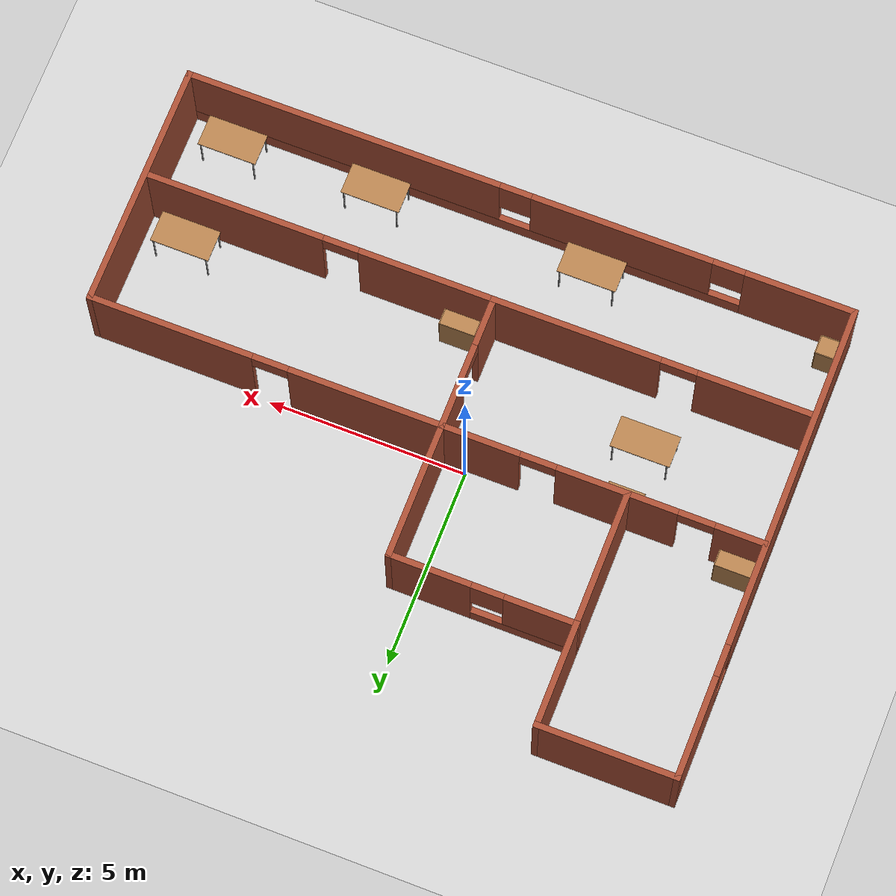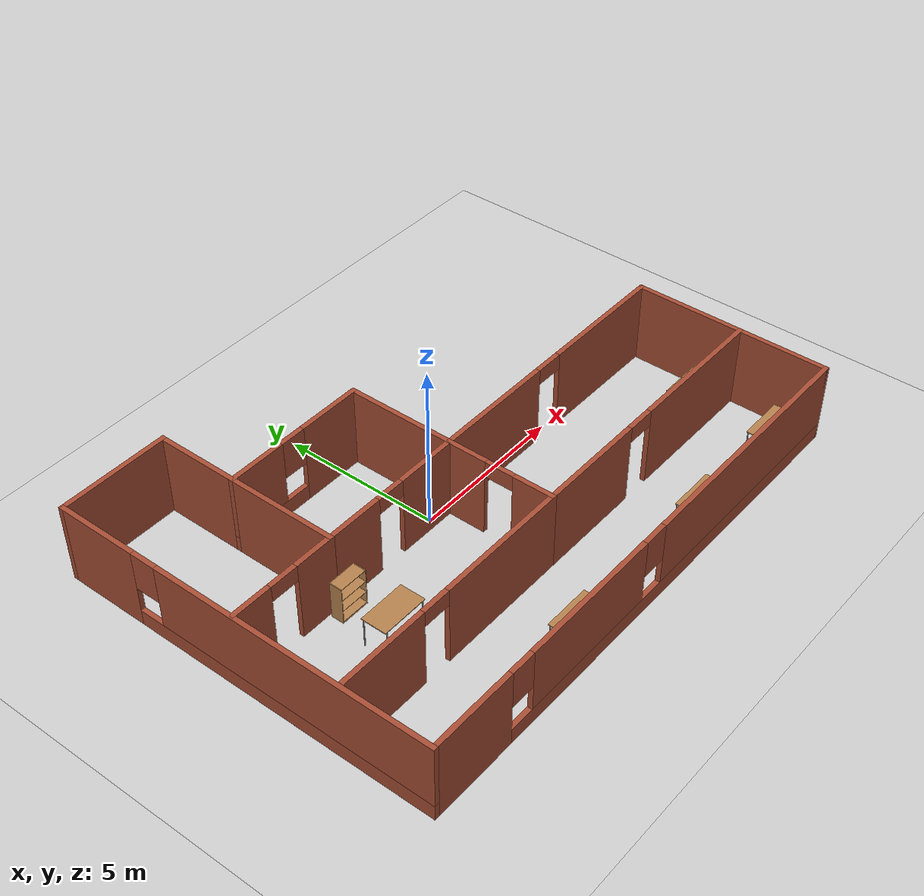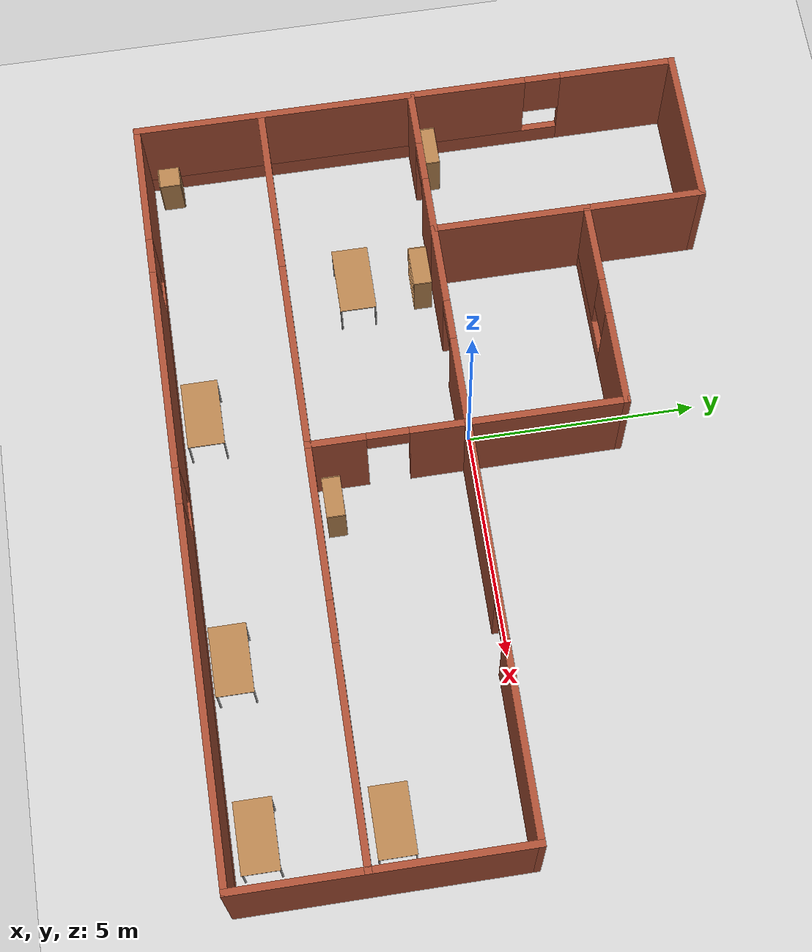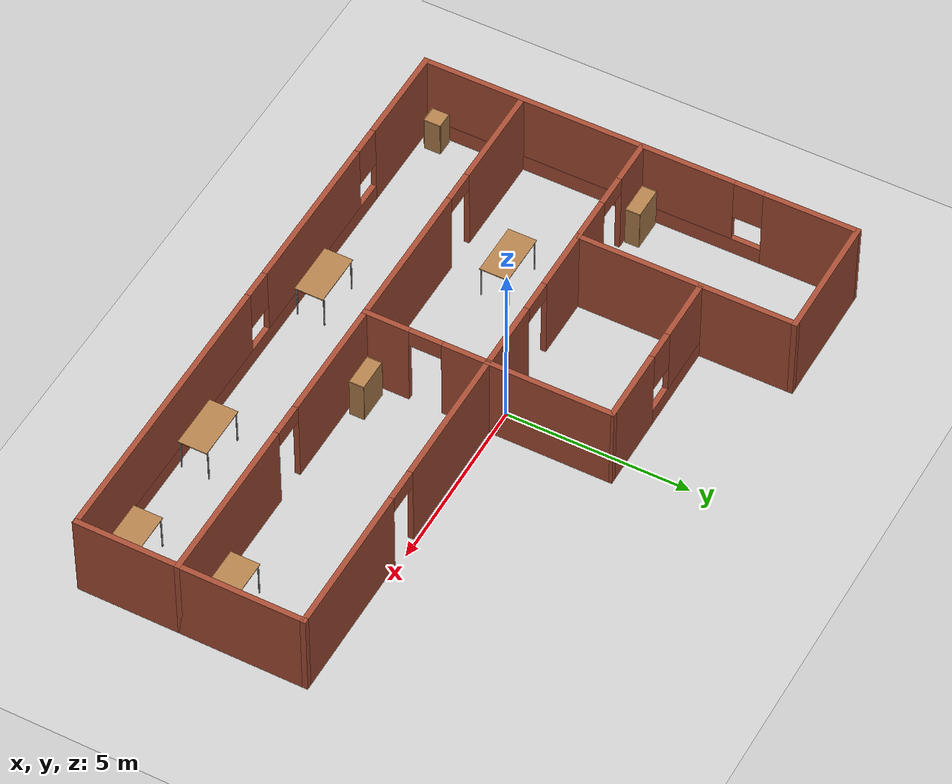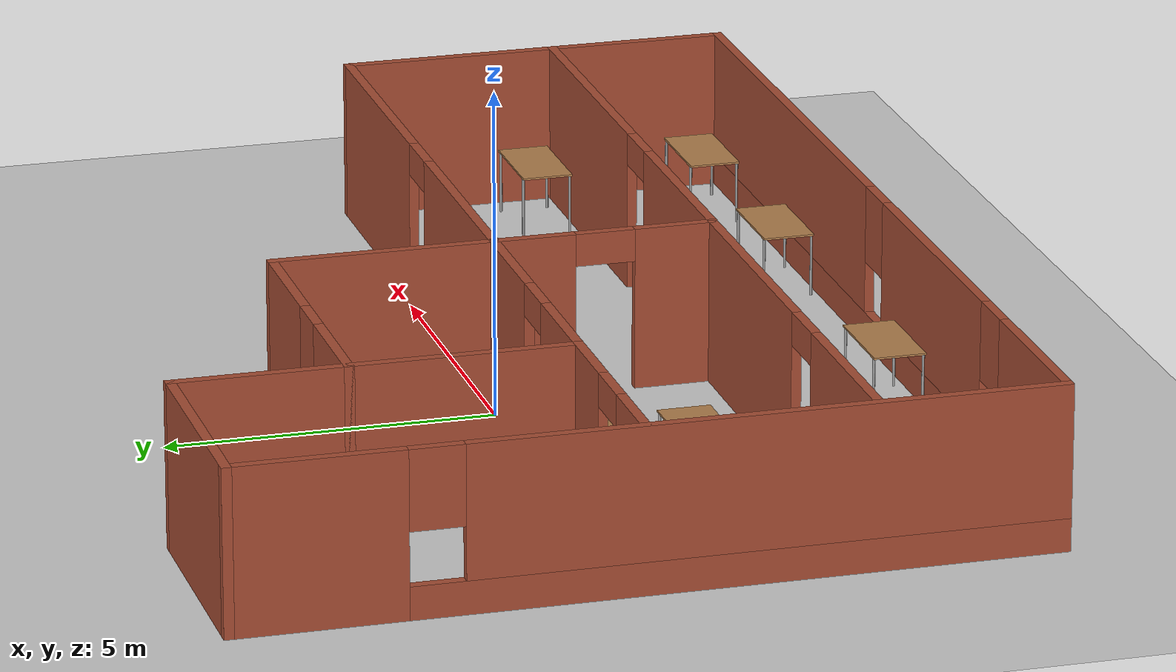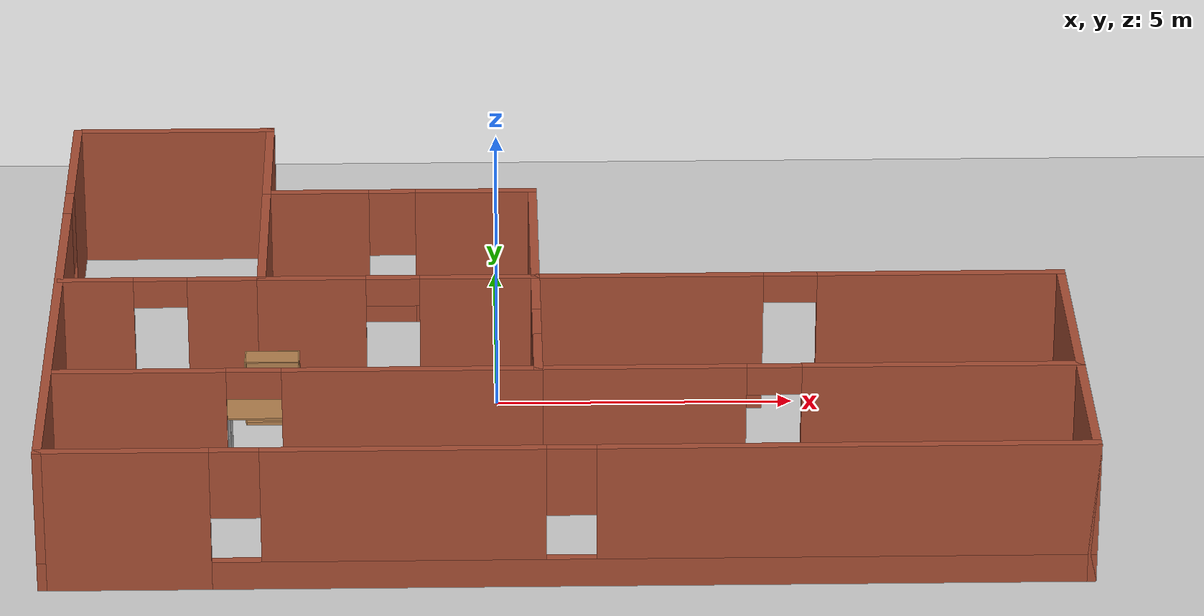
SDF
<sdf version="1.6">
 <world name="default">
  <light name="sun" type="point">
   <cast_shadows>0</cast_shadows>
   <pose>0 0 10 0 -0 0</pose>
   <diffuse>0.8 0.8 0.8 1</diffuse>
   <specular>0.2 0.2 0.2 1</specular>
   <attenuation>
    <range>100000</range>
    <constant>0</constant>
    <linear>0.01</linear>
    <quadratic>0.001</quadratic>
   </attenuation>
   <direction>-0.5 0.1 -0.9</direction>
  </light>
  <model name="ground_plane">
   <static>1</static>
   <link name="link">
    <collision name="collision">
     <geometry><plane><normal>0 0 1</normal><size>100 100</size></plane></geometry>
     <surface>
      <contact><collide_bitmask>65535</collide_bitmask></contact>
      <friction><ode><mu>100</mu><mu2>50</mu2></ode></friction>
     </surface>
    </collision>
    <visual name="visual">
     <cast_shadows>0</cast_shadows>
     <geometry><plane><normal>0 0 1</normal><size>100 100</size></plane></geometry>
     <material>
      <script><uri>file://media/materials/scripts/gazebo.material</uri><name>Gazebo/Grey</name></script>
     </material>
    </visual>
   </link>
  </model>
  <gravity>0 0 -9.8</gravity>
  <magnetic_field>6e-06 2.3e-05 -4.2e-05</magnetic_field>
  <atmosphere type="adiabatic"/>
  <physics name="default_physics" default="0" type="ode">
   <max_step_size>0.001</max_step_size>
   <real_time_factor>1</real_time_factor>
   <real_time_update_rate>1000</real_time_update_rate>
  </physics>
  <scene><ambient>0.4 0.4 0.4 1</ambient><background>0.7 0.7 0.7 1</background><shadows>1</shadows></scene>
  <spherical_coordinates>
   <surface_model>EARTH_WGS84</surface_model>
   <latitude_deg>0</latitude_deg>
   <longitude_deg>0</longitude_deg>
   <elevation>0</elevation>
   <heading_deg>0</heading_deg>
  </spherical_coordinates>
  <model name="Building">
   <pose>1.06565 -0.26135 0 0 -0 0</pose>
   <link name="Wall_13">
    <pose>9.2e-05 -6 0 0 -0 0</pose>
    <visual name="Wall_13_Visual_0">
     <pose>-7.09926 0 1.25 0 -0 0</pose>
     <geometry><box><size>2.80148 0.15 2.5</size></box></geometry>
     <material>
      <script><uri>file://media/materials/scripts/gazebo.material</uri><name>Gazebo/Bricks</name></script>
      <ambient>1 1 1 1</ambient>
     </material>
     <meta><layer>0</layer></meta>
    </visual>
    <collision name="Wall_13_Collision_0">
     <geometry><box><size>2.80148 0.15 2.5</size></box></geometry>
     <pose>-7.09926 0 1.25 0 -0 0</pose>
    </collision>
    <visual name="Wall_13_Visual_1">
     <pose>1.40074 0 0.25 0 -0 0</pose>
     <geometry><box><size>14.1985 0.15 0.5</size></box></geometry>
     <material>
      <script><uri>file://media/materials/scripts/gazebo.material</uri><name>Gazebo/Bricks</name></script>
      <ambient>1 1 1 1</ambient>
     </material>
     <meta><layer>0</layer></meta>
    </visual>
    <collision name="Wall_13_Collision_1">
     <geometry><box><size>14.1985 0.15 0.5</size></box></geometry>
     <pose>1.40074 0 0.25 0 -0 0</pose>
    </collision>
    <visual name="Wall_13_Visual_2">
     <pose>-2.61693 0 1.5 0 -0 0</pose>
     <geometry><box><size>4.56317 0.15 2</size></box></geometry>
     <material>
      <script><uri>file://media/materials/scripts/gazebo.material</uri><name>Gazebo/Bricks</name></script>
      <ambient>1 1 1 1</ambient>
     </material>
     <meta><layer>0</layer></meta>
    </visual>
    <collision name="Wall_13_Collision_2">
     <geometry><box><size>4.56317 0.15 2</size></box></geometry>
     <pose>-2.61693 0 1.5 0 -0 0</pose>
    </collision>
    <visual name="Wall_13_Visual_3">
     <pose>4.48233 0 1.5 0 -0 0</pose>
     <geometry><box><size>8.03535 0.15 2</size></box></geometry>
     <material>
      <script><uri>file://media/materials/scripts/gazebo.material</uri><name>Gazebo/Bricks</name></script>
      <ambient>1 1 1 1</ambient>
     </material>
     <meta><layer>0</layer></meta>
    </visual>
    <collision name="Wall_13_Collision_3">
     <geometry><box><size>8.03535 0.15 2</size></box></geometry>
     <pose>4.48233 0 1.5 0 -0 0</pose>
    </collision>
    <visual name="Wall_13_Visual_4">
     <pose>-5.29852 0 1.9 0 -0 0</pose>
     <geometry><box><size>0.8 0.15 1.2</size></box></geometry>
     <material>
      <script><uri>file://media/materials/scripts/gazebo.material</uri><name>Gazebo/Bricks</name></script>
      <ambient>1 1 1 1</ambient>
     </material>
     <meta><layer>0</layer></meta>
    </visual>
    <collision name="Wall_13_Collision_4">
     <geometry><box><size>0.8 0.15 1.2</size></box></geometry>
     <pose>-5.29852 0 1.9 0 -0 0</pose>
    </collision>
    <visual name="Wall_13_Visual_5">
     <pose>0.064651 0 1.9 0 -0 0</pose>
     <geometry><box><size>0.8 0.15 1.2</size></box></geometry>
     <material>
      <script><uri>file://media/materials/scripts/gazebo.material</uri><name>Gazebo/Bricks</name></script>
      <ambient>1 1 1 1</ambient>
     </material>
     <meta><layer>0</layer></meta>
    </visual>
    <collision name="Wall_13_Collision_5">
     <geometry><box><size>0.8 0.15 1.2</size></box></geometry>
     <pose>0.064651 0 1.9 0 -0 0</pose>
    </collision>
   </link>
   <link name="Wall_14">
    <collision name="Wall_14_Collision">
     <geometry><box><size>6.25 0.15 2.5</size></box></geometry>
     <pose>0 0 1.25 0 -0 0</pose>
    </collision>
    <visual name="Wall_14_Visual">
     <pose>0 0 1.25 0 -0 0</pose>
     <geometry><box><size>6.25 0.15 2.5</size></box></geometry>
     <material>
      <script><uri>file://media/materials/scripts/gazebo.material</uri><name>Gazebo/Bricks</name></script>
      <ambient>1 1 1 1</ambient>
     </material>
     <meta><layer>0</layer></meta>
    </visual>
    <pose>8.42509 -2.95 0 0 -0 1.5708</pose>
   </link>
   <link name="Wall_15">
    <pose>4.00009 0.1 0 0 -0 3.14159</pose>
    <visual name="Wall_15_Visual_0">
     <pose>-2.4082 0 1.25 0 -0 0</pose>
     <geometry><box><size>4.18361 0.15 2.5</size></box></geometry>
     <material>
      <script><uri>file://media/materials/scripts/gazebo.material</uri><name>Gazebo/Bricks</name></script>
      <ambient>1 1 1 1</ambient>
     </material>
     <meta><layer>0</layer></meta>
    </visual>
    <collision name="Wall_15_Collision_0">
     <geometry><box><size>4.18361 0.15 2.5</size></box></geometry>
     <pose>-2.4082 0 1.25 0 -0 0</pose>
    </collision>
    <visual name="Wall_15_Visual_1">
     <pose>2.54181 0 1.25 0 -0 0</pose>
     <geometry><box><size>3.91639 0.15 2.5</size></box></geometry>
     <material>
      <script><uri>file://media/materials/scripts/gazebo.material</uri><name>Gazebo/Bricks</name></script>
      <ambient>1 1 1 1</ambient>
     </material>
     <meta><layer>0</layer></meta>
    </visual>
    <collision name="Wall_15_Collision_1">
     <geometry><box><size>3.91639 0.15 2.5</size></box></geometry>
     <pose>2.54181 0 1.25 0 -0 0</pose>
    </collision>
    <visual name="Wall_15_Visual_2">
     <pose>0.133609 0 2.25 0 -0 0</pose>
     <geometry><box><size>0.9 0.15 0.5</size></box></geometry>
     <material>
      <script><uri>file://media/materials/scripts/gazebo.material</uri><name>Gazebo/Bricks</name></script>
      <ambient>1 1 1 1</ambient>
     </material>
     <meta><layer>0</layer></meta>
    </visual>
    <collision name="Wall_15_Collision_2">
     <geometry><box><size>0.9 0.15 0.5</size></box></geometry>
     <pose>0.133609 0 2.25 0 -0 0</pose>
    </collision>
   </link>
   <link name="Wall_16">
    <collision name="Wall_16_Collision">
     <geometry><box><size>3.5 0.15 2.5</size></box></geometry>
     <pose>0 0 1.25 0 -0 0</pose>
    </collision>
    <visual name="Wall_16_Visual">
     <pose>0 0 1.25 0 -0 0</pose>
     <geometry><box><size>3.5 0.15 2.5</size></box></geometry>
     <material>
      <script><uri>file://media/materials/scripts/gazebo.material</uri><name>Gazebo/Bricks</name></script>
      <ambient>1 1 1 1</ambient>
     </material>
     <meta><layer>0</layer></meta>
    </visual>
    <pose>-0.424908 1.775 0 0 -0 1.5708</pose>
   </link>
   <link name="Wall_17">
    <pose>-2.72491 3.45 0 0 -0 3.14159</pose>
    <visual name="Wall_17_Visual_0">
     <pose>-1.32273 0 1.25 0 -0 0</pose>
     <geometry><box><size>2.10454 0.15 2.5</size></box></geometry>
     <material>
      <script><uri>file://media/materials/scripts/gazebo.material</uri><name>Gazebo/Bricks</name></script>
      <ambient>1 1 1 1</ambient>
     </material>
     <meta><layer>0</layer></meta>
    </visual>
    <collision name="Wall_17_Collision_0">
     <geometry><box><size>2.10454 0.15 2.5</size></box></geometry>
     <pose>-1.32273 0 1.25 0 -0 0</pose>
    </collision>
    <visual name="Wall_17_Visual_1">
     <pose>1.05227 0 0.25 0 -0 0</pose>
     <geometry><box><size>2.64546 0.15 0.5</size></box></geometry>
     <material>
      <script><uri>file://media/materials/scripts/gazebo.material</uri><name>Gazebo/Bricks</name></script>
      <ambient>1 1 1 1</ambient>
     </material>
     <meta><layer>0</layer></meta>
    </visual>
    <collision name="Wall_17_Collision_1">
     <geometry><box><size>2.64546 0.15 0.5</size></box></geometry>
     <pose>1.05227 0 0.25 0 -0 0</pose>
    </collision>
    <visual name="Wall_17_Visual_2">
     <pose>1.45227 0 1.5 0 -0 0</pose>
     <geometry><box><size>1.84546 0.15 2</size></box></geometry>
     <material>
      <script><uri>file://media/materials/scripts/gazebo.material</uri><name>Gazebo/Bricks</name></script>
      <ambient>1 1 1 1</ambient>
     </material>
     <meta><layer>0</layer></meta>
    </visual>
    <collision name="Wall_17_Collision_2">
     <geometry><box><size>1.84546 0.15 2</size></box></geometry>
     <pose>1.45227 0 1.5 0 -0 0</pose>
    </collision>
    <visual name="Wall_17_Visual_3">
     <pose>0.129541 0 1.9 0 -0 0</pose>
     <geometry><box><size>0.8 0.15 1.2</size></box></geometry>
     <material>
      <script><uri>file://media/materials/scripts/gazebo.material</uri><name>Gazebo/Bricks</name></script>
      <ambient>1 1 1 1</ambient>
     </material>
     <meta><layer>0</layer></meta>
    </visual>
    <collision name="Wall_17_Collision_3">
     <geometry><box><size>0.8 0.15 1.2</size></box></geometry>
     <pose>0.129541 0 1.9 0 -0 0</pose>
    </collision>
   </link>
   <link name="Wall_18">
    <collision name="Wall_18_Collision">
     <geometry><box><size>2.7 0.15 2.5</size></box></geometry>
     <pose>0 0 1.25 0 -0 0</pose>
    </collision>
    <visual name="Wall_18_Visual">
     <pose>0 0 1.25 0 -0 0</pose>
     <geometry><box><size>2.7 0.15 2.5</size></box></geometry>
     <material>
      <script><uri>file://media/materials/scripts/gazebo.material</uri><name>Gazebo/Bricks</name></script>
      <ambient>1 1 1 1</ambient>
     </material>
     <meta><layer>0</layer></meta>
    </visual>
    <pose>-5.02491 4.725 0 0 -0 1.5708</pose>
   </link>
   <link name="Wall_19">
    <collision name="Wall_19_Collision">
     <geometry><box><size>3.55037 0.15 2.5</size></box></geometry>
     <pose>0 0 1.25 0 -0 0</pose>
    </collision>
    <visual name="Wall_19_Visual">
     <pose>0 0 1.25 0 -0 0</pose>
     <geometry><box><size>3.55037 0.15 2.5</size></box></geometry>
     <material>
      <script><uri>file://media/materials/scripts/gazebo.material</uri><name>Gazebo/Bricks</name></script>
      <ambient>1 1 1 1</ambient>
     </material>
     <meta><layer>0</layer></meta>
    </visual>
    <pose>-6.72491 6 0 0 -0 3.14159</pose>
   </link>
   <link name="Wall_21">
    <collision name="Wall_21_Collision">
     <geometry><box><size>3.5 0.15 2.5</size></box></geometry>
     <pose>0 0 1.25 0 -0 0</pose>
    </collision>
    <visual name="Wall_21_Visual">
     <pose>0 0 1.25 0 -0 0</pose>
     <geometry><box><size>3.5 0.15 2.5</size></box></geometry>
     <material>
      <script><uri>file://media/materials/scripts/gazebo.material</uri><name>Gazebo/Bricks</name></script>
      <ambient>1 1 1 1</ambient>
     </material>
     <meta><layer>0</layer></meta>
    </visual>
    <pose>-5.02491 1.775 0 0 -0 -1.5708</pose>
   </link>
   <link name="Wall_22">
    <pose>-2.72491 0.1 0 0 -0 0</pose>
    <visual name="Wall_22_Visual_0">
     <pose>-1.4603 0 1.25 0 -0 0</pose>
     <geometry><box><size>1.8294 0.15 2.5</size></box></geometry>
     <material>
      <script><uri>file://media/materials/scripts/gazebo.material</uri><name>Gazebo/Bricks</name></script>
      <ambient>1 1 1 1</ambient>
     </material>
     <meta><layer>0</layer></meta>
    </visual>
    <collision name="Wall_22_Collision_0">
     <geometry><box><size>1.8294 0.15 2.5</size></box></geometry>
     <pose>-1.4603 0 1.25 0 -0 0</pose>
    </collision>
    <visual name="Wall_22_Visual_1">
     <pose>1.3647 0 1.25 0 -0 0</pose>
     <geometry><box><size>2.0206 0.15 2.5</size></box></geometry>
     <material>
      <script><uri>file://media/materials/scripts/gazebo.material</uri><name>Gazebo/Bricks</name></script>
      <ambient>1 1 1 1</ambient>
     </material>
     <meta><layer>0</layer></meta>
    </visual>
    <collision name="Wall_22_Collision_1">
     <geometry><box><size>2.0206 0.15 2.5</size></box></geometry>
     <pose>1.3647 0 1.25 0 -0 0</pose>
    </collision>
    <visual name="Wall_22_Visual_2">
     <pose>-0.095597 0 2.25 0 -0 0</pose>
     <geometry><box><size>0.9 0.15 0.5</size></box></geometry>
     <material>
      <script><uri>file://media/materials/scripts/gazebo.material</uri><name>Gazebo/Bricks</name></script>
      <ambient>1 1 1 1</ambient>
     </material>
     <meta><layer>0</layer></meta>
    </visual>
    <collision name="Wall_22_Collision_2">
     <geometry><box><size>0.9 0.15 0.5</size></box></geometry>
     <pose>-0.095597 0 2.25 0 -0 0</pose>
    </collision>
   </link>
   <link name="Wall_23">
    <pose>-0.424908 -1.575 0 0 -0 -1.5708</pose>
    <visual name="Wall_23_Visual_0">
     <pose>-1.09569 0 1.25 0 -0 0</pose>
     <geometry><box><size>1.30863 0.15 2.5</size></box></geometry>
     <material>
      <script><uri>file://media/materials/scripts/gazebo.material</uri><name>Gazebo/Bricks</name></script>
      <ambient>1 1 1 1</ambient>
     </material>
     <meta><layer>0</layer></meta>
    </visual>
    <collision name="Wall_23_Collision_0">
     <geometry><box><size>1.30863 0.15 2.5</size></box></geometry>
     <pose>-1.09569 0 1.25 0 -0 0</pose>
    </collision>
    <visual name="Wall_23_Visual_1">
     <pose>1.10431 0 1.25 0 -0 0</pose>
     <geometry><box><size>1.29137 0.15 2.5</size></box></geometry>
     <material>
      <script><uri>file://media/materials/scripts/gazebo.material</uri><name>Gazebo/Bricks</name></script>
      <ambient>1 1 1 1</ambient>
     </material>
     <meta><layer>0</layer></meta>
    </visual>
    <collision name="Wall_23_Collision_1">
     <geometry><box><size>1.29137 0.15 2.5</size></box></geometry>
     <pose>1.10431 0 1.25 0 -0 0</pose>
    </collision>
    <visual name="Wall_23_Visual_2">
     <pose>0.008626 0 2.25 0 -0 0</pose>
     <geometry><box><size>0.9 0.15 0.5</size></box></geometry>
     <material>
      <script><uri>file://media/materials/scripts/gazebo.material</uri><name>Gazebo/Bricks</name></script>
      <ambient>1 1 1 1</ambient>
     </material>
     <meta><layer>0</layer></meta>
    </visual>
    <collision name="Wall_23_Collision_2">
     <geometry><box><size>0.9 0.15 0.5</size></box></geometry>
     <pose>0.008626 0 2.25 0 -0 0</pose>
    </collision>
   </link>
   <link name="Wall_24">
    <pose>4.00009 -3.25 0 0 -0 0</pose>
    <visual name="Wall_24_Visual_0">
     <pose>-2.76244 0 1.25 0 -0 0</pose>
     <geometry><box><size>3.47512 0.15 2.5</size></box></geometry>
     <material>
      <script><uri>file://media/materials/scripts/gazebo.material</uri><name>Gazebo/Bricks</name></script>
      <ambient>1 1 1 1</ambient>
     </material>
     <meta><layer>0</layer></meta>
    </visual>
    <collision name="Wall_24_Collision_0">
     <geometry><box><size>3.47512 0.15 2.5</size></box></geometry>
     <pose>-2.76244 0 1.25 0 -0 0</pose>
    </collision>
    <visual name="Wall_24_Visual_1">
     <pose>2.18756 0 1.25 0 -0 0</pose>
     <geometry><box><size>4.62488 0.15 2.5</size></box></geometry>
     <material>
      <script><uri>file://media/materials/scripts/gazebo.material</uri><name>Gazebo/Bricks</name></script>
      <ambient>1 1 1 1</ambient>
     </material>
     <meta><layer>0</layer></meta>
    </visual>
    <collision name="Wall_24_Collision_1">
     <geometry><box><size>4.62488 0.15 2.5</size></box></geometry>
     <pose>2.18756 0 1.25 0 -0 0</pose>
    </collision>
    <visual name="Wall_24_Visual_2">
     <pose>-0.574883 0 2.25 0 -0 0</pose>
     <geometry><box><size>0.9 0.15 0.5</size></box></geometry>
     <material>
      <script><uri>file://media/materials/scripts/gazebo.material</uri><name>Gazebo/Bricks</name></script>
      <ambient>1 1 1 1</ambient>
     </material>
     <meta><layer>0</layer></meta>
    </visual>
    <collision name="Wall_24_Collision_2">
     <geometry><box><size>0.9 0.15 0.5</size></box></geometry>
     <pose>-0.574883 0 2.25 0 -0 0</pose>
    </collision>
   </link>
   <link name="Wall_26">
    <pose>-6.69991 0.1 0 0 -0 3.14159</pose>
    <visual name="Wall_26_Visual_0">
     <pose>-1.08792 0 1.25 0 -0 0</pose>
     <geometry><box><size>1.32417 0.15 2.5</size></box></geometry>
     <material>
      <script><uri>file://media/materials/scripts/gazebo.material</uri><name>Gazebo/Bricks</name></script>
      <ambient>1 1 1 1</ambient>
     </material>
     <meta><layer>0</layer></meta>
    </visual>
    <collision name="Wall_26_Collision_0">
     <geometry><box><size>1.32417 0.15 2.5</size></box></geometry>
     <pose>-1.08792 0 1.25 0 -0 0</pose>
    </collision>
    <visual name="Wall_26_Visual_1">
     <pose>1.11208 0 1.25 0 -0 0</pose>
     <geometry><box><size>1.27583 0.15 2.5</size></box></geometry>
     <material>
      <script><uri>file://media/materials/scripts/gazebo.material</uri><name>Gazebo/Bricks</name></script>
      <ambient>1 1 1 1</ambient>
     </material>
     <meta><layer>0</layer></meta>
    </visual>
    <collision name="Wall_26_Collision_1">
     <geometry><box><size>1.27583 0.15 2.5</size></box></geometry>
     <pose>1.11208 0 1.25 0 -0 0</pose>
    </collision>
    <visual name="Wall_26_Visual_2">
     <pose>0.024169 0 2.25 0 -0 0</pose>
     <geometry><box><size>0.9 0.15 0.5</size></box></geometry>
     <material>
      <script><uri>file://media/materials/scripts/gazebo.material</uri><name>Gazebo/Bricks</name></script>
      <ambient>1 1 1 1</ambient>
     </material>
     <meta><layer>0</layer></meta>
    </visual>
    <collision name="Wall_26_Collision_2">
     <geometry><box><size>0.9 0.15 0.5</size></box></geometry>
     <pose>0.024169 0 2.25 0 -0 0</pose>
    </collision>
   </link>
   <link name="Wall_28">
    <pose>-4.34991 -3.25 0 0 -0 3.14159</pose>
    <visual name="Wall_28_Visual_0">
     <pose>-1.86955 0 1.25 0 -0 0</pose>
     <geometry><box><size>4.26091 0.15 2.5</size></box></geometry>
     <material>
      <script><uri>file://media/materials/scripts/gazebo.material</uri><name>Gazebo/Bricks</name></script>
      <ambient>1 1 1 1</ambient>
     </material>
     <meta><layer>0</layer></meta>
    </visual>
    <collision name="Wall_28_Collision_0">
     <geometry><box><size>4.26091 0.15 2.5</size></box></geometry>
     <pose>-1.86955 0 1.25 0 -0 0</pose>
    </collision>
    <visual name="Wall_28_Visual_1">
     <pose>2.58045 0 1.25 0 -0 0</pose>
     <geometry><box><size>2.83909 0.15 2.5</size></box></geometry>
     <material>
      <script><uri>file://media/materials/scripts/gazebo.material</uri><name>Gazebo/Bricks</name></script>
      <ambient>1 1 1 1</ambient>
     </material>
     <meta><layer>0</layer></meta>
    </visual>
    <collision name="Wall_28_Collision_1">
     <geometry><box><size>2.83909 0.15 2.5</size></box></geometry>
     <pose>2.58045 0 1.25 0 -0 0</pose>
    </collision>
    <visual name="Wall_28_Visual_2">
     <pose>0.710908 0 2.25 0 -0 0</pose>
     <geometry><box><size>0.9 0.15 0.5</size></box></geometry>
     <material>
      <script><uri>file://media/materials/scripts/gazebo.material</uri><name>Gazebo/Bricks</name></script>
      <ambient>1 1 1 1</ambient>
     </material>
     <meta><layer>0</layer></meta>
    </visual>
    <collision name="Wall_28_Collision_2">
     <geometry><box><size>0.9 0.15 0.5</size></box></geometry>
     <pose>0.710908 0 2.25 0 -0 0</pose>
    </collision>
   </link>
   <link name="Wall_3">
    <pose>-8.42491 0 0 0 -0 -1.5708</pose>
    <visual name="Wall_3_Visual_0">
     <pose>-4.77087 0 1.25 0 -0 0</pose>
     <geometry><box><size>2.60831 0.15 2.5</size></box></geometry>
     <material>
      <script><uri>file://media/materials/scripts/gazebo.material</uri><name>Gazebo/Bricks</name></script>
      <ambient>1 1 1 1</ambient>
     </material>
     <meta><layer>0</layer></meta>
    </visual>
    <collision name="Wall_3_Collision_0">
     <geometry><box><size>2.60831 0.15 2.5</size></box></geometry>
     <pose>-4.77087 0 1.25 0 -0 0</pose>
    </collision>
    <visual name="Wall_3_Visual_1">
     <pose>1.30415 0 0.25 0 -0 0</pose>
     <geometry><box><size>9.54174 0.15 0.5</size></box></geometry>
     <material>
      <script><uri>file://media/materials/scripts/gazebo.material</uri><name>Gazebo/Bricks</name></script>
      <ambient>1 1 1 1</ambient>
     </material>
     <meta><layer>0</layer></meta>
    </visual>
    <collision name="Wall_3_Collision_1">
     <geometry><box><size>9.54174 0.15 0.5</size></box></geometry>
     <pose>1.30415 0 0.25 0 -0 0</pose>
    </collision>
    <visual name="Wall_3_Visual_2">
     <pose>1.70415 0 1.5 0 -0 0</pose>
     <geometry><box><size>8.74174 0.15 2</size></box></geometry>
     <material>
      <script><uri>file://media/materials/scripts/gazebo.material</uri><name>Gazebo/Bricks</name></script>
      <ambient>1 1 1 1</ambient>
     </material>
     <meta><layer>0</layer></meta>
    </visual>
    <collision name="Wall_3_Collision_2">
     <geometry><box><size>8.74174 0.15 2</size></box></geometry>
     <pose>1.70415 0 1.5 0 -0 0</pose>
    </collision>
    <visual name="Wall_3_Visual_3">
     <pose>-3.06672 0 1.9 0 -0 0</pose>
     <geometry><box><size>0.8 0.15 1.2</size></box></geometry>
     <material>
      <script><uri>file://media/materials/scripts/gazebo.material</uri><name>Gazebo/Bricks</name></script>
      <ambient>1 1 1 1</ambient>
     </material>
     <meta><layer>0</layer></meta>
    </visual>
    <collision name="Wall_3_Collision_3">
     <geometry><box><size>0.8 0.15 1.2</size></box></geometry>
     <pose>-3.06672 0 1.9 0 -0 0</pose>
    </collision>
   </link>
   <static>1</static>
  </model>
  <model name="cabinet">
   <static>1</static>
   <link name="cabinet_bottom_plate">
    <inertial>
     <pose>0 0 -1 0 -0 0</pose>
     <inertia><ixx>2.05</ixx><ixy>0</ixy><ixz>0</ixz><iyy>2.05</iyy><iyz>0</iyz><izz>2.05</izz></inertia>
     <mass>25</mass>
    </inertial>
    <collision name="cabinet_bottom_plate_geom">
     <pose>0 0 0.01 0 -0 0</pose>
     <geometry><box><size>0.45 0.45 0.02</size></box></geometry>
    </collision>
    <visual name="cabinet_bottom_plate_geom_visual">
     <pose>0 0 0.01 0 -0 0</pose>
     <geometry><box><size>0.45 0.45 0.02</size></box></geometry>
     <material>
      <script><uri>file://media/materials/scripts/gazebo.material</uri><name>Gazebo/Wood</name></script>
     </material>
    </visual>
    <collision name="cabinet_bottom_plate_geom_cabinet_back_plate">
     <pose>0.235 0 0.51 0 -0 0</pose>
     <geometry><box><size>0.02 0.45 1.02</size></box></geometry>
    </collision>
    <visual name="cabinet_bottom_plate_geom_cabinet_back_plate_visual">
     <pose>0.235 0 0.51 0 -0 0</pose>
     <geometry><box><size>0.02 0.45 1.02</size></box></geometry>
     <material>
      <script><uri>file://media/materials/scripts/gazebo.material</uri><name>Gazebo/Wood</name></script>
     </material>
    </visual>
    <collision name="cabinet_bottom_plate_geom_cabinet_left_plate">
     <pose>0 0.235 0.51 0 -0 0</pose>
     <geometry><box><size>0.45 0.02 1.02</size></box></geometry>
    </collision>
    <visual name="cabinet_bottom_plate_geom_cabinet_left_plate_visual">
     <pose>0 0.235 0.51 0 -0 0</pose>
     <geometry><box><size>0.45 0.02 1.02</size></box></geometry>
     <material>
      <script><uri>file://media/materials/scripts/gazebo.material</uri><name>Gazebo/Wood</name></script>
     </material>
    </visual>
    <collision name="cabinet_bottom_plate_geom_cabinet_middle_plate">
     <pose>0 0 0.51 0 -0 0</pose>
     <geometry><box><size>0.45 0.45 0.02</size></box></geometry>
    </collision>
    <visual name="cabinet_bottom_plate_geom_cabinet_middle_plate_visual">
     <pose>0 0 0.51 0 -0 0</pose>
     <geometry><box><size>0.45 0.45 0.02</size></box></geometry>
     <material>
      <script><uri>file://media/materials/scripts/gazebo.material</uri><name>Gazebo/Wood</name></script>
     </material>
    </visual>
    <collision name="cabinet_bottom_plate_geom_cabinet_right_plate">
     <pose>0 -0.235 0.51 0 -0 0</pose>
     <geometry><box><size>0.45 0.02 1.02</size></box></geometry>
    </collision>
    <visual name="cabinet_bottom_plate_geom_cabinet_right_plate_visual">
     <pose>0 -0.235 0.51 0 -0 0</pose>
     <geometry><box><size>0.45 0.02 1.02</size></box></geometry>
     <material>
      <script><uri>file://media/materials/scripts/gazebo.material</uri><name>Gazebo/Wood</name></script>
     </material>
    </visual>
    <collision name="cabinet_bottom_plate_geom_cabinet_top_plate">
     <pose>0 0 1.01 0 -0 0</pose>
     <geometry><box><size>0.45 0.45 0.02</size></box></geometry>
    </collision>
    <visual name="cabinet_bottom_plate_geom_cabinet_top_plate_visual">
     <pose>0 0 1.01 0 -0 0</pose>
     <geometry><box><size>0.45 0.45 0.02</size></box></geometry>
     <material>
      <script><uri>file://media/materials/scripts/gazebo.material</uri><name>Gazebo/Wood</name></script>
     </material>
    </visual>
   </link>
   <pose>-6.98904 -5.76118 0 0 -0 0</pose>
  </model>
  <model name="bookshelf">
   <static>1</static>
   <link name="link">
    <inertial><mass>1</mass></inertial>
    <collision name="back">
     <pose>0 0.005 0.6 0 -0 0</pose>
     <geometry><box><size>0.9 0.01 1.2</size></box></geometry>
    </collision>
    <visual name="visual1">
     <pose>0 0.005 0.6 0 -0 0</pose>
     <geometry><box><size>0.9 0.01 1.2</size></box></geometry>
     <material>
      <script><uri>file://media/materials/scripts/gazebo.material</uri><name>Gazebo/Wood</name></script>
     </material>
    </visual>
    <collision name="left_side">
     <pose>0.45 -0.195 0.6 0 -0 0</pose>
     <geometry><box><size>0.02 0.4 1.2</size></box></geometry>
    </collision>
    <visual name="visual2">
     <pose>0.45 -0.195 0.6 0 -0 0</pose>
     <geometry><box><size>0.02 0.4 1.2</size></box></geometry>
     <material>
      <script><uri>file://media/materials/scripts/gazebo.material</uri><name>Gazebo/Wood</name></script>
     </material>
    </visual>
    <collision name="right_side">
     <pose>-0.45 -0.195 0.6 0 -0 0</pose>
     <geometry><box><size>0.02 0.4 1.2</size></box></geometry>
    </collision>
    <visual name="visual3">
     <pose>-0.45 -0.195 0.6 0 -0 0</pose>
     <geometry><box><size>0.02 0.4 1.2</size></box></geometry>
     <material>
      <script><uri>file://media/materials/scripts/gazebo.material</uri><name>Gazebo/Wood</name></script>
     </material>
    </visual>
    <collision name="bottom">
     <pose>0 -0.195 0.03 0 -0 0</pose>
     <geometry><box><size>0.88 0.4 0.06</size></box></geometry>
    </collision>
    <visual name="visual4">
     <pose>0 -0.195 0.03 0 -0 0</pose>
     <geometry><box><size>0.88 0.4 0.06</size></box></geometry>
     <material>
      <script><uri>file://media/materials/scripts/gazebo.material</uri><name>Gazebo/Wood</name></script>
     </material>
    </visual>
    <collision name="top">
     <pose>0 -0.195 1.19 0 -0 0</pose>
     <geometry><box><size>0.88 0.4 0.02</size></box></geometry>
    </collision>
    <visual name="visual5">
     <pose>0 -0.195 1.19 0 -0 0</pose>
     <geometry><box><size>0.88 0.4 0.02</size></box></geometry>
     <material>
      <script><uri>file://media/materials/scripts/gazebo.material</uri><name>Gazebo/Wood</name></script>
     </material>
    </visual>
    <collision name="low_shelf">
     <pose>0 -0.195 0.43 0 -0 0</pose>
     <geometry><box><size>0.88 0.4 0.02</size></box></geometry>
    </collision>
    <visual name="visual6">
     <pose>0 -0.195 0.43 0 -0 0</pose>
     <geometry><box><size>0.88 0.4 0.02</size></box></geometry>
     <material>
      <script><uri>file://media/materials/scripts/gazebo.material</uri><name>Gazebo/Wood</name></script>
     </material>
    </visual>
    <collision name="high_shelf">
     <pose>0 -0.195 0.8 0 -0 0</pose>
     <geometry><box><size>0.88 0.4 0.02</size></box></geometry>
    </collision>
    <visual name="visual7">
     <pose>0 -0.195 0.8 0 -0 0</pose>
     <geometry><box><size>0.88 0.4 0.02</size></box></geometry>
     <material>
      <script><uri>file://media/materials/scripts/gazebo.material</uri><name>Gazebo/Wood</name></script>
     </material>
    </visual>
   </link>
   <pose>-3.79861 -0.310436 0 0 -0 0</pose>
  </model>
  <model name="table">
   <static>1</static>
   <link name="link">
    <collision name="surface">
     <pose>0 0 1 0 -0 0</pose>
     <geometry><box><size>1.5 0.8 0.03</size></box></geometry>
     <surface><friction><ode><mu>0.6</mu><mu2>0.6</mu2></ode></friction></surface>
    </collision>
    <visual name="visual1">
     <pose>0 0 1 0 -0 0</pose>
     <geometry><box><size>1.5 0.8 0.03</size></box></geometry>
     <material>
      <script><uri>file://media/materials/scripts/gazebo.material</uri><name>Gazebo/Wood</name></script>
     </material>
    </visual>
    <collision name="front_left_leg">
     <pose>0.68 0.38 0.5 0 -0 0</pose>
     <geometry><cylinder><radius>0.02</radius><length>1</length></cylinder></geometry>
    </collision>
    <visual name="front_left_leg">
     <pose>0.68 0.38 0.5 0 -0 0</pose>
     <geometry><cylinder><radius>0.02</radius><length>1</length></cylinder></geometry>
     <material>
      <script><uri>file://media/materials/scripts/gazebo.material</uri><name>Gazebo/Grey</name></script>
     </material>
    </visual>
    <collision name="front_right_leg">
     <pose>0.68 -0.38 0.5 0 -0 0</pose>
     <geometry><cylinder><radius>0.02</radius><length>1</length></cylinder></geometry>
    </collision>
    <visual name="front_right_leg">
     <pose>0.68 -0.38 0.5 0 -0 0</pose>
     <geometry><cylinder><radius>0.02</radius><length>1</length></cylinder></geometry>
     <material>
      <script><uri>file://media/materials/scripts/gazebo.material</uri><name>Gazebo/Grey</name></script>
     </material>
    </visual>
    <collision name="back_right_leg">
     <pose>-0.68 -0.38 0.5 0 -0 0</pose>
     <geometry><cylinder><radius>0.02</radius><length>1</length></cylinder></geometry>
    </collision>
    <visual name="back_right_leg">
     <pose>-0.68 -0.38 0.5 0 -0 0</pose>
     <geometry><cylinder><radius>0.02</radius><length>1</length></cylinder></geometry>
     <material>
      <script><uri>file://media/materials/scripts/gazebo.material</uri><name>Gazebo/Grey</name></script>
     </material>
    </visual>
    <collision name="back_left_leg">
     <pose>-0.68 0.38 0.5 0 -0 0</pose>
     <geometry><cylinder><radius>0.02</radius><length>1</length></cylinder></geometry>
    </collision>
    <visual name="back_left_leg">
     <pose>-0.68 0.38 0.5 0 -0 0</pose>
     <geometry><cylinder><radius>0.02</radius><length>1</length></cylinder></geometry>
     <material>
      <script><uri>file://media/materials/scripts/gazebo.material</uri><name>Gazebo/Grey</name></script>
     </material>
    </visual>
   </link>
   <pose>-3.78234 -1.98746 0 0 -0 0</pose>
  </model>
  <model name="table_0">
   <static>1</static>
   <link name="link">
    <collision name="surface">
     <pose>0 0 1 0 -0 0</pose>
     <geometry><box><size>1.5 0.8 0.03</size></box></geometry>
     <surface><friction><ode><mu>0.6</mu><mu2>0.6</mu2></ode></friction></surface>
    </collision>
    <visual name="visual1">
     <pose>0 0 1 0 -0 0</pose>
     <geometry><box><size>1.5 0.8 0.03</size></box></geometry>
     <material>
      <script><uri>file://media/materials/scripts/gazebo.material</uri><name>Gazebo/Wood</name></script>
     </material>
    </visual>
    <collision name="front_left_leg">
     <pose>0.68 0.38 0.5 0 -0 0</pose>
     <geometry><cylinder><radius>0.02</radius><length>1</length></cylinder></geometry>
    </collision>
    <visual name="front_left_leg">
     <pose>0.68 0.38 0.5 0 -0 0</pose>
     <geometry><cylinder><radius>0.02</radius><length>1</length></cylinder></geometry>
     <material>
      <script><uri>file://media/materials/scripts/gazebo.material</uri><name>Gazebo/Grey</name></script>
     </material>
    </visual>
    <collision name="front_right_leg">
     <pose>0.68 -0.38 0.5 0 -0 0</pose>
     <geometry><cylinder><radius>0.02</radius><length>1</length></cylinder></geometry>
    </collision>
    <visual name="front_right_leg">
     <pose>0.68 -0.38 0.5 0 -0 0</pose>
     <geometry><cylinder><radius>0.02</radius><length>1</length></cylinder></geometry>
     <material>
      <script><uri>file://media/materials/scripts/gazebo.material</uri><name>Gazebo/Grey</name></script>
     </material>
    </visual>
    <collision name="back_right_leg">
     <pose>-0.68 -0.38 0.5 0 -0 0</pose>
     <geometry><cylinder><radius>0.02</radius><length>1</length></cylinder></geometry>
    </collision>
    <visual name="back_right_leg">
     <pose>-0.68 -0.38 0.5 0 -0 0</pose>
     <geometry><cylinder><radius>0.02</radius><length>1</length></cylinder></geometry>
     <material>
      <script><uri>file://media/materials/scripts/gazebo.material</uri><name>Gazebo/Grey</name></script>
     </material>
    </visual>
    <collision name="back_left_leg">
     <pose>-0.68 0.38 0.5 0 -0 0</pose>
     <geometry><cylinder><radius>0.02</radius><length>1</length></cylinder></geometry>
    </collision>
    <visual name="back_left_leg">
     <pose>-0.68 0.38 0.5 0 -0 0</pose>
     <geometry><cylinder><radius>0.02</radius><length>1</length></cylinder></geometry>
     <material>
      <script><uri>file://media/materials/scripts/gazebo.material</uri><name>Gazebo/Grey</name></script>
     </material>
    </visual>
   </link>
   <pose>8.30085 -2.88946 0 0 -0 0</pose>
  </model>
  <model name="table_1">
   <static>1</static>
   <link name="link">
    <collision name="surface">
     <pose>0 0 1 0 -0 0</pose>
     <geometry><box><size>1.5 0.8 0.03</size></box></geometry>
     <surface><friction><ode><mu>0.6</mu><mu2>0.6</mu2></ode></friction></surface>
    </collision>
    <visual name="visual1">
     <pose>0 0 1 0 -0 0</pose>
     <geometry><box><size>1.5 0.8 0.03</size></box></geometry>
     <material>
      <script><uri>file://media/materials/scripts/gazebo.material</uri><name>Gazebo/Wood</name></script>
     </material>
    </visual>
    <collision name="front_left_leg">
     <pose>0.68 0.38 0.5 0 -0 0</pose>
     <geometry><cylinder><radius>0.02</radius><length>1</length></cylinder></geometry>
    </collision>
    <visual name="front_left_leg">
     <pose>0.68 0.38 0.5 0 -0 0</pose>
     <geometry><cylinder><radius>0.02</radius><length>1</length></cylinder></geometry>
     <material>
      <script><uri>file://media/materials/scripts/gazebo.material</uri><name>Gazebo/Grey</name></script>
     </material>
    </visual>
    <collision name="front_right_leg">
     <pose>0.68 -0.38 0.5 0 -0 0</pose>
     <geometry><cylinder><radius>0.02</radius><length>1</length></cylinder></geometry>
    </collision>
    <visual name="front_right_leg">
     <pose>0.68 -0.38 0.5 0 -0 0</pose>
     <geometry><cylinder><radius>0.02</radius><length>1</length></cylinder></geometry>
     <material>
      <script><uri>file://media/materials/scripts/gazebo.material</uri><name>Gazebo/Grey</name></script>
     </material>
    </visual>
    <collision name="back_right_leg">
     <pose>-0.68 -0.38 0.5 0 -0 0</pose>
     <geometry><cylinder><radius>0.02</radius><length>1</length></cylinder></geometry>
    </collision>
    <visual name="back_right_leg">
     <pose>-0.68 -0.38 0.5 0 -0 0</pose>
     <geometry><cylinder><radius>0.02</radius><length>1</length></cylinder></geometry>
     <material>
      <script><uri>file://media/materials/scripts/gazebo.material</uri><name>Gazebo/Grey</name></script>
     </material>
    </visual>
    <collision name="back_left_leg">
     <pose>-0.68 0.38 0.5 0 -0 0</pose>
     <geometry><cylinder><radius>0.02</radius><length>1</length></cylinder></geometry>
    </collision>
    <visual name="back_left_leg">
     <pose>-0.68 0.38 0.5 0 -0 0</pose>
     <geometry><cylinder><radius>0.02</radius><length>1</length></cylinder></geometry>
     <material>
      <script><uri>file://media/materials/scripts/gazebo.material</uri><name>Gazebo/Grey</name></script>
     </material>
    </visual>
   </link>
   <pose>8.19125 -5.60691 0 0 -0 0</pose>
  </model>
  <model name="table_2">
   <static>1</static>
   <link name="link">
    <collision name="surface">
     <pose>0 0 1 0 -0 0</pose>
     <geometry><box><size>1.5 0.8 0.03</size></box></geometry>
     <surface><friction><ode><mu>0.6</mu><mu2>0.6</mu2></ode></friction></surface>
    </collision>
    <visual name="visual1">
     <pose>0 0 1 0 -0 0</pose>
     <geometry><box><size>1.5 0.8 0.03</size></box></geometry>
     <material>
      <script><uri>file://media/materials/scripts/gazebo.material</uri><name>Gazebo/Wood</name></script>
     </material>
    </visual>
    <collision name="front_left_leg">
     <pose>0.68 0.38 0.5 0 -0 0</pose>
     <geometry><cylinder><radius>0.02</radius><length>1</length></cylinder></geometry>
    </collision>
    <visual name="front_left_leg">
     <pose>0.68 0.38 0.5 0 -0 0</pose>
     <geometry><cylinder><radius>0.02</radius><length>1</length></cylinder></geometry>
     <material>
      <script><uri>file://media/materials/scripts/gazebo.material</uri><name>Gazebo/Grey</name></script>
     </material>
    </visual>
    <collision name="front_right_leg">
     <pose>0.68 -0.38 0.5 0 -0 0</pose>
     <geometry><cylinder><radius>0.02</radius><length>1</length></cylinder></geometry>
    </collision>
    <visual name="front_right_leg">
     <pose>0.68 -0.38 0.5 0 -0 0</pose>
     <geometry><cylinder><radius>0.02</radius><length>1</length></cylinder></geometry>
     <material>
      <script><uri>file://media/materials/scripts/gazebo.material</uri><name>Gazebo/Grey</name></script>
     </material>
    </visual>
    <collision name="back_right_leg">
     <pose>-0.68 -0.38 0.5 0 -0 0</pose>
     <geometry><cylinder><radius>0.02</radius><length>1</length></cylinder></geometry>
    </collision>
    <visual name="back_right_leg">
     <pose>-0.68 -0.38 0.5 0 -0 0</pose>
     <geometry><cylinder><radius>0.02</radius><length>1</length></cylinder></geometry>
     <material>
      <script><uri>file://media/materials/scripts/gazebo.material</uri><name>Gazebo/Grey</name></script>
     </material>
    </visual>
    <collision name="back_left_leg">
     <pose>-0.68 0.38 0.5 0 -0 0</pose>
     <geometry><cylinder><radius>0.02</radius><length>1</length></cylinder></geometry>
    </collision>
    <visual name="back_left_leg">
     <pose>-0.68 0.38 0.5 0 -0 0</pose>
     <geometry><cylinder><radius>0.02</radius><length>1</length></cylinder></geometry>
     <material>
      <script><uri>file://media/materials/scripts/gazebo.material</uri><name>Gazebo/Grey</name></script>
     </material>
    </visual>
   </link>
   <pose>4.50684 -5.68888 0 0 -0 0</pose>
  </model>
  <model name="table_3">
   <static>1</static>
   <link name="link">
    <collision name="surface">
     <pose>0 0 1 0 -0 0</pose>
     <geometry><box><size>1.5 0.8 0.03</size></box></geometry>
     <surface><friction><ode><mu>0.6</mu><mu2>0.6</mu2></ode></friction></surface>
    </collision>
    <visual name="visual1">
     <pose>0 0 1 0 -0 0</pose>
     <geometry><box><size>1.5 0.8 0.03</size></box></geometry>
     <material>
      <script><uri>file://media/materials/scripts/gazebo.material</uri><name>Gazebo/Wood</name></script>
     </material>
    </visual>
    <collision name="front_left_leg">
     <pose>0.68 0.38 0.5 0 -0 0</pose>
     <geometry><cylinder><radius>0.02</radius><length>1</length></cylinder></geometry>
    </collision>
    <visual name="front_left_leg">
     <pose>0.68 0.38 0.5 0 -0 0</pose>
     <geometry><cylinder><radius>0.02</radius><length>1</length></cylinder></geometry>
     <material>
      <script><uri>file://media/materials/scripts/gazebo.material</uri><name>Gazebo/Grey</name></script>
     </material>
    </visual>
    <collision name="front_right_leg">
     <pose>0.68 -0.38 0.5 0 -0 0</pose>
     <geometry><cylinder><radius>0.02</radius><length>1</length></cylinder></geometry>
    </collision>
    <visual name="front_right_leg">
     <pose>0.68 -0.38 0.5 0 -0 0</pose>
     <geometry><cylinder><radius>0.02</radius><length>1</length></cylinder></geometry>
     <material>
      <script><uri>file://media/materials/scripts/gazebo.material</uri><name>Gazebo/Grey</name></script>
     </material>
    </visual>
    <collision name="back_right_leg">
     <pose>-0.68 -0.38 0.5 0 -0 0</pose>
     <geometry><cylinder><radius>0.02</radius><length>1</length></cylinder></geometry>
    </collision>
    <visual name="back_right_leg">
     <pose>-0.68 -0.38 0.5 0 -0 0</pose>
     <geometry><cylinder><radius>0.02</radius><length>1</length></cylinder></geometry>
     <material>
      <script><uri>file://media/materials/scripts/gazebo.material</uri><name>Gazebo/Grey</name></script>
     </material>
    </visual>
    <collision name="back_left_leg">
     <pose>-0.68 0.38 0.5 0 -0 0</pose>
     <geometry><cylinder><radius>0.02</radius><length>1</length></cylinder></geometry>
    </collision>
    <visual name="back_left_leg">
     <pose>-0.68 0.38 0.5 0 -0 0</pose>
     <geometry><cylinder><radius>0.02</radius><length>1</length></cylinder></geometry>
     <material>
      <script><uri>file://media/materials/scripts/gazebo.material</uri><name>Gazebo/Grey</name></script>
     </material>
    </visual>
   </link>
   <pose>-1.05701 -5.6571 0 0 -0 0</pose>
  </model>
  <model name="bookshelf_0">
   <static>1</static>
   <link name="link">
    <inertial><mass>1</mass></inertial>
    <collision name="back">
     <pose>0 0.005 0.6 0 -0 0</pose>
     <geometry><box><size>0.9 0.01 1.2</size></box></geometry>
    </collision>
    <visual name="visual1">
     <pose>0 0.005 0.6 0 -0 0</pose>
     <geometry><box><size>0.9 0.01 1.2</size></box></geometry>
     <material>
      <script><uri>file://media/materials/scripts/gazebo.material</uri><name>Gazebo/Wood</name></script>
     </material>
    </visual>
    <collision name="left_side">
     <pose>0.45 -0.195 0.6 0 -0 0</pose>
     <geometry><box><size>0.02 0.4 1.2</size></box></geometry>
    </collision>
    <visual name="visual2">
     <pose>0.45 -0.195 0.6 0 -0 0</pose>
     <geometry><box><size>0.02 0.4 1.2</size></box></geometry>
     <material>
      <script><uri>file://media/materials/scripts/gazebo.material</uri><name>Gazebo/Wood</name></script>
     </material>
    </visual>
    <collision name="right_side">
     <pose>-0.45 -0.195 0.6 0 -0 0</pose>
     <geometry><box><size>0.02 0.4 1.2</size></box></geometry>
    </collision>
    <visual name="visual3">
     <pose>-0.45 -0.195 0.6 0 -0 0</pose>
     <geometry><box><size>0.02 0.4 1.2</size></box></geometry>
     <material>
      <script><uri>file://media/materials/scripts/gazebo.material</uri><name>Gazebo/Wood</name></script>
     </material>
    </visual>
    <collision name="bottom">
     <pose>0 -0.195 0.03 0 -0 0</pose>
     <geometry><box><size>0.88 0.4 0.06</size></box></geometry>
    </collision>
    <visual name="visual4">
     <pose>0 -0.195 0.03 0 -0 0</pose>
     <geometry><box><size>0.88 0.4 0.06</size></box></geometry>
     <material>
      <script><uri>file://media/materials/scripts/gazebo.material</uri><name>Gazebo/Wood</name></script>
     </material>
    </visual>
    <collision name="top">
     <pose>0 -0.195 1.19 0 -0 0</pose>
     <geometry><box><size>0.88 0.4 0.02</size></box></geometry>
    </collision>
    <visual name="visual5">
     <pose>0 -0.195 1.19 0 -0 0</pose>
     <geometry><box><size>0.88 0.4 0.02</size></box></geometry>
     <material>
      <script><uri>file://media/materials/scripts/gazebo.material</uri><name>Gazebo/Wood</name></script>
     </material>
    </visual>
    <collision name="low_shelf">
     <pose>0 -0.195 0.43 0 -0 0</pose>
     <geometry><box><size>0.88 0.4 0.02</size></box></geometry>
    </collision>
    <visual name="visual6">
     <pose>0 -0.195 0.43 0 -0 0</pose>
     <geometry><box><size>0.88 0.4 0.02</size></box></geometry>
     <material>
      <script><uri>file://media/materials/scripts/gazebo.material</uri><name>Gazebo/Wood</name></script>
     </material>
    </visual>
    <collision name="high_shelf">
     <pose>0 -0.195 0.8 0 -0 0</pose>
     <geometry><box><size>0.88 0.4 0.02</size></box></geometry>
    </collision>
    <visual name="visual7">
     <pose>0 -0.195 0.8 0 -0 0</pose>
     <geometry><box><size>0.88 0.4 0.02</size></box></geometry>
     <material>
      <script><uri>file://media/materials/scripts/gazebo.material</uri><name>Gazebo/Wood</name></script>
     </material>
    </visual>
   </link>
   <pose>-6.78977 0.330704 0 0 -0 0</pose>
  </model>
  <model name="bookshelf_1">
   <static>1</static>
   <link name="link">
    <inertial><mass>1</mass></inertial>
    <collision name="back">
     <pose>0 0.005 0.6 0 -0 0</pose>
     <geometry><box><size>0.9 0.01 1.2</size></box></geometry>
    </collision>
    <visual name="visual1">
     <pose>0 0.005 0.6 0 -0 0</pose>
     <geometry><box><size>0.9 0.01 1.2</size></box></geometry>
     <material>
      <script><uri>file://media/materials/scripts/gazebo.material</uri><name>Gazebo/Wood</name></script>
     </material>
    </visual>
    <collision name="left_side">
     <pose>0.45 -0.195 0.6 0 -0 0</pose>
     <geometry><box><size>0.02 0.4 1.2</size></box></geometry>
    </collision>
    <visual name="visual2">
     <pose>0.45 -0.195 0.6 0 -0 0</pose>
     <geometry><box><size>0.02 0.4 1.2</size></box></geometry>
     <material>
      <script><uri>file://media/materials/scripts/gazebo.material</uri><name>Gazebo/Wood</name></script>
     </material>
    </visual>
    <collision name="right_side">
     <pose>-0.45 -0.195 0.6 0 -0 0</pose>
     <geometry><box><size>0.02 0.4 1.2</size></box></geometry>
    </collision>
    <visual name="visual3">
     <pose>-0.45 -0.195 0.6 0 -0 0</pose>
     <geometry><box><size>0.02 0.4 1.2</size></box></geometry>
     <material>
      <script><uri>file://media/materials/scripts/gazebo.material</uri><name>Gazebo/Wood</name></script>
     </material>
    </visual>
    <collision name="bottom">
     <pose>0 -0.195 0.03 0 -0 0</pose>
     <geometry><box><size>0.88 0.4 0.06</size></box></geometry>
    </collision>
    <visual name="visual4">
     <pose>0 -0.195 0.03 0 -0 0</pose>
     <geometry><box><size>0.88 0.4 0.06</size></box></geometry>
     <material>
      <script><uri>file://media/materials/scripts/gazebo.material</uri><name>Gazebo/Wood</name></script>
     </material>
    </visual>
    <collision name="top">
     <pose>0 -0.195 1.19 0 -0 0</pose>
     <geometry><box><size>0.88 0.4 0.02</size></box></geometry>
    </collision>
    <visual name="visual5">
     <pose>0 -0.195 1.19 0 -0 0</pose>
     <geometry><box><size>0.88 0.4 0.02</size></box></geometry>
     <material>
      <script><uri>file://media/materials/scripts/gazebo.material</uri><name>Gazebo/Wood</name></script>
     </material>
    </visual>
    <collision name="low_shelf">
     <pose>0 -0.195 0.43 0 -0 0</pose>
     <geometry><box><size>0.88 0.4 0.02</size></box></geometry>
    </collision>
    <visual name="visual6">
     <pose>0 -0.195 0.43 0 -0 0</pose>
     <geometry><box><size>0.88 0.4 0.02</size></box></geometry>
     <material>
      <script><uri>file://media/materials/scripts/gazebo.material</uri><name>Gazebo/Wood</name></script>
     </material>
    </visual>
    <collision name="high_shelf">
     <pose>0 -0.195 0.8 0 -0 0</pose>
     <geometry><box><size>0.88 0.4 0.02</size></box></geometry>
    </collision>
    <visual name="visual7">
     <pose>0 -0.195 0.8 0 -0 0</pose>
     <geometry><box><size>0.88 0.4 0.02</size></box></geometry>
     <material>
      <script><uri>file://media/materials/scripts/gazebo.material</uri><name>Gazebo/Wood</name></script>
     </material>
    </visual>
   </link>
   <pose>1.3487 -2.93892 0 0 -0 0</pose>
  </model>
  <plugin filename="libcollision_map_creator.so" name="collision_map_creator"/>
 </world>
</sdf>
